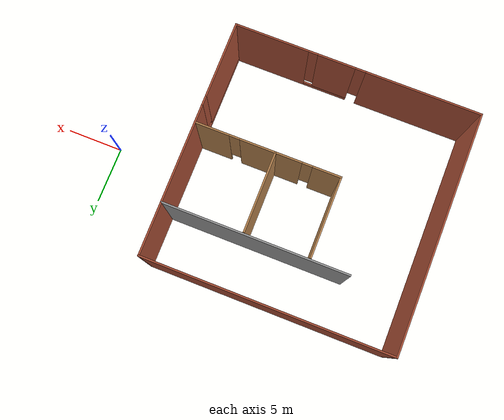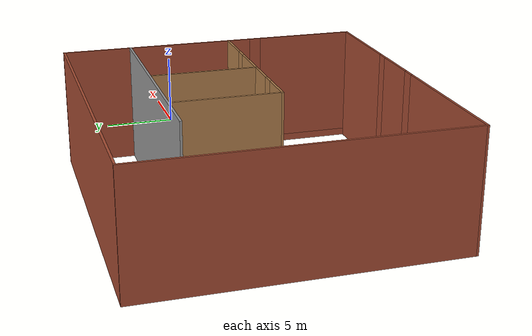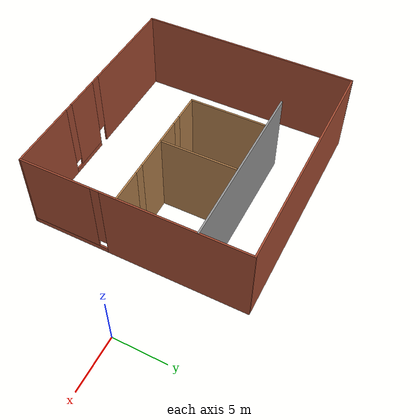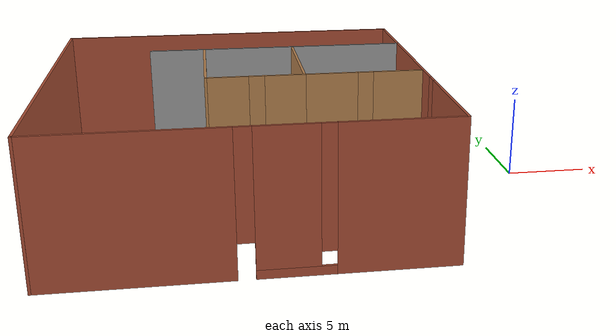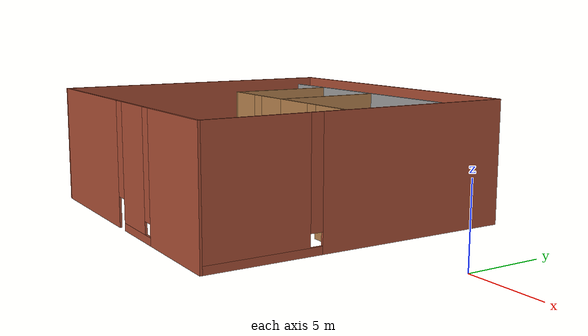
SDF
<?xml version='1.0'?>
<sdf version='1.6'>
  <model name='Building'>
    <pose frame=''>-17.446 -1.67 0 0 -0 0</pose>
    <link name='Wall_12'>
      <collision name='Wall_12_Collision'>
        <geometry>
          <box>
            <size>20.75 0.15 8</size>
          </box>
        </geometry>
        <pose frame=''>0 0 4 0 -0 0</pose>
      </collision>
      <visual name='Wall_12_Visual'>
        <pose frame=''>0 0 4 0 -0 0</pose>
        <geometry>
          <box>
            <size>20.75 0.15 8</size>
          </box>
        </geometry>
        <material>
          <script>
            <uri>file://media/materials/scripts/gazebo.material</uri>
            <name>Gazebo/Bricks</name>
          </script>
          <ambient>1 1 1 1</ambient>
        </material>
        <meta>
          <layer>0</layer>
        </meta>
      </visual>
      <pose frame=''>-10.675 0 0 0 -0 1.5708</pose>
    </link>
    <link name='Wall_13'>
      <collision name='Wall_13_Collision'>
        <geometry>
          <box>
            <size>21.5 0.15 8</size>
          </box>
        </geometry>
        <pose frame=''>0 0 4 0 -0 0</pose>
      </collision>
      <visual name='Wall_13_Visual'>
        <pose frame=''>0 0 4 0 -0 0</pose>
        <geometry>
          <box>
            <size>21.5 0.15 8</size>
          </box>
        </geometry>
        <material>
          <script>
            <uri>file://media/materials/scripts/gazebo.material</uri>
            <name>Gazebo/Bricks</name>
          </script>
          <ambient>1 1 1 1</ambient>
        </material>
        <meta>
          <layer>0</layer>
        </meta>
      </visual>
      <pose frame=''>1e-06 10.3 0 0 -0 0</pose>
    </link>
    <link name='Wall_14'>
      <pose frame=''>10.675 0 0 0 0 -1.5708</pose>
      <visual name='Wall_14_Visual_0'>
        <pose frame=''>-3.76806 0 4 0 -0 0</pose>
        <geometry>
          <box>
            <size>13.2139 0.15 8</size>
          </box>
        </geometry>
        <material>
          <script>
            <uri>file://media/materials/scripts/gazebo.material</uri>
            <name>Gazebo/Bricks</name>
          </script>
          <ambient>1 1 1 1</ambient>
        </material>
        <meta>
          <layer>0</layer>
        </meta>
      </visual>
      <collision name='Wall_14_Collision_0'>
        <geometry>
          <box>
            <size>13.2139 0.15 8</size>
          </box>
        </geometry>
        <pose frame=''>-3.76806 0 4 0 -0 0</pose>
      </collision>
      <visual name='Wall_14_Visual_1'>
        <pose frame=''>6.60694 0 0.25 0 -0 0</pose>
        <geometry>
          <box>
            <size>7.53612 0.15 0.5</size>
          </box>
        </geometry>
        <material>
          <script>
            <uri>file://media/materials/scripts/gazebo.material</uri>
            <name>Gazebo/Bricks</name>
          </script>
          <ambient>1 1 1 1</ambient>
        </material>
        <meta>
          <layer>0</layer>
        </meta>
      </visual>
      <collision name='Wall_14_Collision_1'>
        <geometry>
          <box>
            <size>7.53612 0.15 0.5</size>
          </box>
        </geometry>
        <pose frame=''>6.60694 0 0.25 0 -0 0</pose>
      </collision>
      <visual name='Wall_14_Visual_2'>
        <pose frame=''>7.00694 0 4.25 0 -0 0</pose>
        <geometry>
          <box>
            <size>6.73612 0.15 7.5</size>
          </box>
        </geometry>
        <material>
          <script>
            <uri>file://media/materials/scripts/gazebo.material</uri>
            <name>Gazebo/Bricks</name>
          </script>
          <ambient>1 1 1 1</ambient>
        </material>
        <meta>
          <layer>0</layer>
        </meta>
      </visual>
      <collision name='Wall_14_Collision_2'>
        <geometry>
          <box>
            <size>6.73612 0.15 7.5</size>
          </box>
        </geometry>
        <pose frame=''>7.00694 0 4.25 0 -0 0</pose>
      </collision>
      <visual name='Wall_14_Visual_3'>
        <pose frame=''>3.23888 0 4.65 0 -0 0</pose>
        <geometry>
          <box>
            <size>0.8 0.15 6.7</size>
          </box>
        </geometry>
        <material>
          <script>
            <uri>file://media/materials/scripts/gazebo.material</uri>
            <name>Gazebo/Bricks</name>
          </script>
          <ambient>1 1 1 1</ambient>
        </material>
        <meta>
          <layer>0</layer>
        </meta>
      </visual>
      <collision name='Wall_14_Collision_3'>
        <geometry>
          <box>
            <size>0.8 0.15 6.7</size>
          </box>
        </geometry>
        <pose frame=''>3.23888 0 4.65 0 -0 0</pose>
      </collision>
    </link>
    <link name='Wall_15'>
      <pose frame=''>1e-06 -10.3 0 0 -0 3.14159</pose>
      <visual name='Wall_15_Visual_0'>
        <pose frame=''>-7.49776 0 4 0 -0 0</pose>
        <geometry>
          <box>
            <size>6.50448 0.15 8</size>
          </box>
        </geometry>
        <material>
          <script>
            <uri>file://media/materials/scripts/gazebo.material</uri>
            <name>Gazebo/Bricks</name>
          </script>
          <ambient>1 1 1 1</ambient>
        </material>
        <meta>
          <layer>0</layer>
        </meta>
      </visual>
      <collision name='Wall_15_Collision_0'>
        <geometry>
          <box>
            <size>6.50448 0.15 8</size>
          </box>
        </geometry>
        <pose frame=''>-7.49776 0 4 0 -0 0</pose>
      </collision>
      <visual name='Wall_15_Visual_1'>
        <pose frame=''>5.74047 0 4 0 -0 0</pose>
        <geometry>
          <box>
            <size>10.019 0.15 8</size>
          </box>
        </geometry>
        <material>
          <script>
            <uri>file://media/materials/scripts/gazebo.material</uri>
            <name>Gazebo/Bricks</name>
          </script>
          <ambient>1 1 1 1</ambient>
        </material>
        <meta>
          <layer>0</layer>
        </meta>
      </visual>
      <collision name='Wall_15_Collision_1'>
        <geometry>
          <box>
            <size>10.019 0.15 8</size>
          </box>
        </geometry>
        <pose frame=''>5.74047 0 4 0 -0 0</pose>
      </collision>
      <visual name='Wall_15_Visual_2'>
        <pose frame=''>-2.20728 0 0.25 0 -0 0</pose>
        <geometry>
          <box>
            <size>4.07647 0.15 0.5</size>
          </box>
        </geometry>
        <material>
          <script>
            <uri>file://media/materials/scripts/gazebo.material</uri>
            <name>Gazebo/Bricks</name>
          </script>
          <ambient>1 1 1 1</ambient>
        </material>
        <meta>
          <layer>0</layer>
        </meta>
      </visual>
      <collision name='Wall_15_Collision_2'>
        <geometry>
          <box>
            <size>4.07647 0.15 0.5</size>
          </box>
        </geometry>
        <pose frame=''>-2.20728 0 0.25 0 -0 0</pose>
      </collision>
      <visual name='Wall_15_Visual_3'>
        <pose frame=''>-1.80728 0 4.25 0 -0 0</pose>
        <geometry>
          <box>
            <size>3.27647 0.15 7.5</size>
          </box>
        </geometry>
        <material>
          <script>
            <uri>file://media/materials/scripts/gazebo.material</uri>
            <name>Gazebo/Bricks</name>
          </script>
          <ambient>1 1 1 1</ambient>
        </material>
        <meta>
          <layer>0</layer>
        </meta>
      </visual>
      <collision name='Wall_15_Collision_3'>
        <geometry>
          <box>
            <size>3.27647 0.15 7.5</size>
          </box>
        </geometry>
        <pose frame=''>-1.80728 0 4.25 0 -0 0</pose>
      </collision>
      <visual name='Wall_15_Visual_4'>
        <pose frame=''>-3.84552 0 4.65 0 -0 0</pose>
        <geometry>
          <box>
            <size>0.8 0.15 6.7</size>
          </box>
        </geometry>
        <material>
          <script>
            <uri>file://media/materials/scripts/gazebo.material</uri>
            <name>Gazebo/Bricks</name>
          </script>
          <ambient>1 1 1 1</ambient>
        </material>
        <meta>
          <layer>0</layer>
        </meta>
      </visual>
      <collision name='Wall_15_Collision_4'>
        <geometry>
          <box>
            <size>0.8 0.15 6.7</size>
          </box>
        </geometry>
        <pose frame=''>-3.84552 0 4.65 0 -0 0</pose>
      </collision>
      <visual name='Wall_15_Visual_5'>
        <pose frame=''>0.280951 0 5 0 -0 0</pose>
        <geometry>
          <box>
            <size>0.9 0.15 6</size>
          </box>
        </geometry>
        <material>
          <script>
            <uri>file://media/materials/scripts/gazebo.material</uri>
            <name>Gazebo/Bricks</name>
          </script>
          <ambient>1 1 1 1</ambient>
        </material>
        <meta>
          <layer>0</layer>
        </meta>
      </visual>
      <collision name='Wall_15_Collision_5'>
        <geometry>
          <box>
            <size>0.9 0.15 6</size>
          </box>
        </geometry>
        <pose frame=''>0.280951 0 5 0 -0 0</pose>
      </collision>
    </link>
    <link name='Wall_17'>
      <collision name='Wall_17_Collision'>
        <geometry>
          <box>
            <size>16 0.15 8</size>
          </box>
        </geometry>
        <pose frame=''>0 0 4 0 -0 0</pose>
      </collision>
      <visual name='Wall_17_Visual'>
        <pose frame=''>0 0 4 0 -0 0</pose>
        <geometry>
          <box>
            <size>16 0.15 8</size>
          </box>
        </geometry>
        <material>
          <script>
            <uri>file://media/materials/scripts/gazebo.material</uri>
            <name>Gazebo/Grey</name>
          </script>
          <ambient>1 1 1 1</ambient>
        </material>
        <meta>
          <layer>0</layer>
        </meta>
      </visual>
      <pose frame=''>2.717 5.742 0 0 -0 3.14159</pose>
    </link>
    <link name='Wall_19'>
      <pose frame=''>7.136 -1.297 0 0 -0 3.14159</pose>
      <visual name='Wall_19_Visual_0'>
        <pose frame=''>-2.02813 0 4 0 -0 0</pose>
        <geometry>
          <box>
            <size>2.94373 0.15 8</size>
          </box>
        </geometry>
        <material>
          <script>
            <uri>file://media/materials/scripts/gazebo.material</uri>
            <name>Gazebo/Wood</name>
          </script>
          <ambient>1 1 1 1</ambient>
        </material>
        <meta>
          <layer>0</layer>
        </meta>
      </visual>
      <collision name='Wall_19_Collision_0'>
        <geometry>
          <box>
            <size>2.94373 0.15 8</size>
          </box>
        </geometry>
        <pose frame=''>-2.02813 0 4 0 -0 0</pose>
      </collision>
      <visual name='Wall_19_Visual_1'>
        <pose frame=''>1.92186 0 4 0 -0 0</pose>
        <geometry>
          <box>
            <size>3.15627 0.15 8</size>
          </box>
        </geometry>
        <material>
          <script>
            <uri>file://media/materials/scripts/gazebo.material</uri>
            <name>Gazebo/Wood</name>
          </script>
          <ambient>1 1 1 1</ambient>
        </material>
        <meta>
          <layer>0</layer>
        </meta>
      </visual>
      <collision name='Wall_19_Collision_1'>
        <geometry>
          <box>
            <size>3.15627 0.15 8</size>
          </box>
        </geometry>
        <pose frame=''>1.92186 0 4 0 -0 0</pose>
      </collision>
      <visual name='Wall_19_Visual_2'>
        <pose frame=''>-0.106271 0 5 0 -0 0</pose>
        <geometry>
          <box>
            <size>0.9 0.15 6</size>
          </box>
        </geometry>
        <material>
          <script>
            <uri>file://media/materials/scripts/gazebo.material</uri>
            <name>Gazebo/Wood</name>
          </script>
          <ambient>1 1 1 1</ambient>
        </material>
        <meta>
          <layer>0</layer>
        </meta>
      </visual>
      <collision name='Wall_19_Collision_2'>
        <geometry>
          <box>
            <size>0.9 0.15 6</size>
          </box>
        </geometry>
        <pose frame=''>-0.106271 0 5 0 -0 0</pose>
      </collision>
    </link>
    <link name='Wall_20'>
      <collision name='Wall_20_Collision'>
        <geometry>
          <box>
            <size>7 0.15 8</size>
          </box>
        </geometry>
        <pose frame=''>0 0 4 0 -0 0</pose>
      </collision>
      <visual name='Wall_20_Visual'>
        <pose frame=''>0 0 4 0 -0 0</pose>
        <geometry>
          <box>
            <size>7 0.15 8</size>
          </box>
        </geometry>
        <material>
          <script>
            <uri>file://media/materials/scripts/gazebo.material</uri>
            <name>Gazebo/Wood</name>
          </script>
          <ambient>1 1 1 1</ambient>
        </material>
        <meta>
          <layer>0</layer>
        </meta>
      </visual>
      <pose frame=''>3.711 2.128 0 0 -0 1.5708</pose>
    </link>
    <link name='Wall_22'>
      <pose frame=''>0.911 -1.297 0 0 -0 3.14159</pose>
      <visual name='Wall_22_Visual_0'>
        <pose frame=''>-1.69722 0 4 0 -0 0</pose>
        <geometry>
          <box>
            <size>2.35555 0.15 8</size>
          </box>
        </geometry>
        <material>
          <script>
            <uri>file://media/materials/scripts/gazebo.material</uri>
            <name>Gazebo/Wood</name>
          </script>
          <ambient>1 1 1 1</ambient>
        </material>
        <meta>
          <layer>0</layer>
        </meta>
      </visual>
      <collision name='Wall_22_Collision_0'>
        <geometry>
          <box>
            <size>2.35555 0.15 8</size>
          </box>
        </geometry>
        <pose frame=''>-1.69722 0 4 0 -0 0</pose>
      </collision>
      <visual name='Wall_22_Visual_1'>
        <pose frame=''>1.62777 0 4 0 -0 0</pose>
        <geometry>
          <box>
            <size>2.49445 0.15 8</size>
          </box>
        </geometry>
        <material>
          <script>
            <uri>file://media/materials/scripts/gazebo.material</uri>
            <name>Gazebo/Wood</name>
          </script>
          <ambient>1 1 1 1</ambient>
        </material>
        <meta>
          <layer>0</layer>
        </meta>
      </visual>
      <collision name='Wall_22_Collision_1'>
        <geometry>
          <box>
            <size>2.49445 0.15 8</size>
          </box>
        </geometry>
        <pose frame=''>1.62777 0 4 0 -0 0</pose>
      </collision>
      <visual name='Wall_22_Visual_2'>
        <pose frame=''>-0.06945 0 5 0 -0 0</pose>
        <geometry>
          <box>
            <size>0.9 0.15 6</size>
          </box>
        </geometry>
        <material>
          <script>
            <uri>file://media/materials/scripts/gazebo.material</uri>
            <name>Gazebo/Wood</name>
          </script>
          <ambient>1 1 1 1</ambient>
        </material>
        <meta>
          <layer>0</layer>
        </meta>
      </visual>
      <collision name='Wall_22_Collision_2'>
        <geometry>
          <box>
            <size>0.9 0.15 6</size>
          </box>
        </geometry>
        <pose frame=''>-0.06945 0 5 0 -0 0</pose>
      </collision>
    </link>
    <link name='Wall_23'>
      <collision name='Wall_23_Collision'>
        <geometry>
          <box>
            <size>7 0.15 8</size>
          </box>
        </geometry>
        <pose frame=''>0 0 4 0 -0 0</pose>
      </collision>
      <visual name='Wall_23_Visual'>
        <pose frame=''>0 0 4 0 -0 0</pose>
        <geometry>
          <box>
            <size>7 0.15 8</size>
          </box>
        </geometry>
        <material>
          <script>
            <uri>file://media/materials/scripts/gazebo.material</uri>
            <name>Gazebo/Wood</name>
          </script>
          <ambient>1 1 1 1</ambient>
        </material>
        <meta>
          <layer>0</layer>
        </meta>
      </visual>
      <pose frame=''>-1.889 2.128 0 0 -0 1.5708</pose>
    </link>
    <static>1</static>
  </model>
</sdf>
